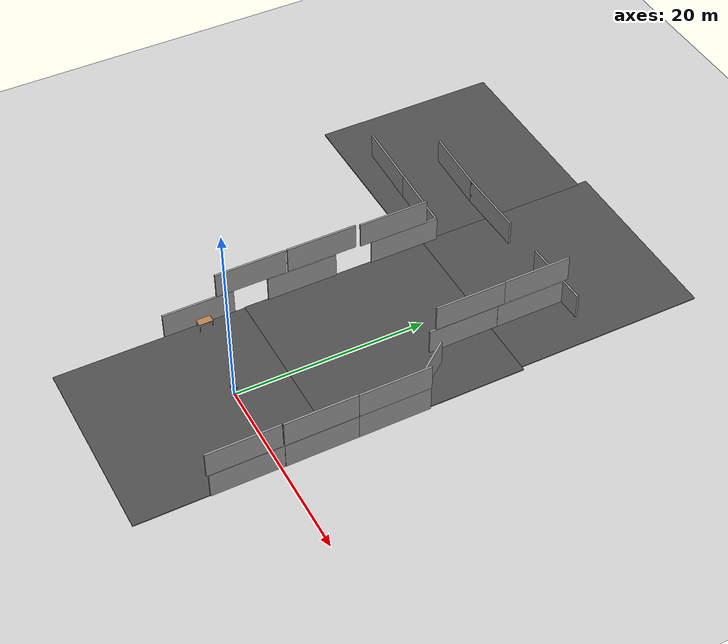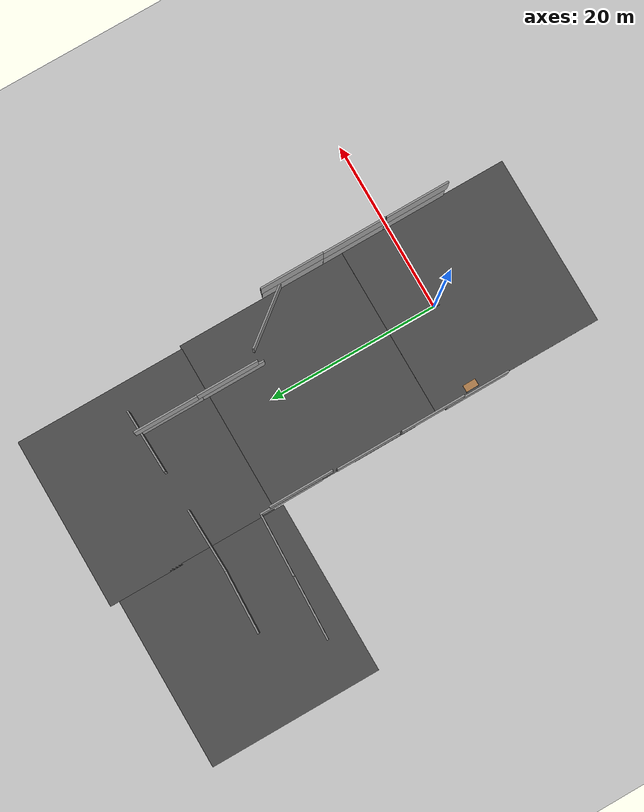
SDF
<sdf version="1.6">
 <world name="default">
  <include><uri>model://maav_matrice</uri><pose>0 0 1 0 0 1.57</pose></include>
  <model name="asphalt_plane">
   <static>1</static>
   <link name="link">
    <collision name="collision"><geometry><box><size>20 20 0.1</size></box></geometry></collision>
    <visual name="visual">
     <cast_shadows>0</cast_shadows>
     <geometry><box><size>20 20 0.1</size></box></geometry>
     <material>
      <script>
       <uri>model://asphalt_plane/materials/scripts</uri>
       <uri>model://asphalt_plane/materials/textures</uri>
       <name>vrc/asphalt</name>
      </script>
     </material>
    </visual>
   </link>
   <pose>0.016282 -4.35292 0 0 -0 0</pose>
  </model>
  <model name="ground_plane">
   <static>1</static>
   <link name="link">
    <collision name="collision">
     <geometry><plane><normal>0 0 1</normal><size>100 100</size></plane></geometry>
     <surface>
      <contact><collide_bitmask>65535</collide_bitmask></contact>
      <friction><ode><mu>100</mu><mu2>50</mu2></ode></friction>
     </surface>
    </collision>
    <visual name="visual">
     <cast_shadows>0</cast_shadows>
     <geometry><plane><normal>0 0 1</normal><size>100 100</size></plane></geometry>
     <material>
      <script><uri>file://media/materials/scripts/gazebo.material</uri><name>Gazebo/Grey</name></script>
     </material>
    </visual>
   </link>
   <pose>-1.27431 2.91806 0 0 -0 0</pose>
  </model>
  <model name="asphalt_plane_0">
   <static>1</static>
   <link name="link">
    <collision name="collision"><geometry><box><size>20 20 0.1</size></box></geometry></collision>
    <visual name="visual">
     <cast_shadows>0</cast_shadows>
     <geometry><box><size>20 20 0.1</size></box></geometry>
     <material>
      <script>
       <uri>model://asphalt_plane/materials/scripts</uri>
       <uri>model://asphalt_plane/materials/textures</uri>
       <name>vrc/asphalt</name>
      </script>
     </material>
    </visual>
   </link>
   <pose>-0.082642 15.648 0 0 -0 0</pose>
  </model>
  <model name="grey_wall_clone">
   <static>1</static>
   <link name="link">
    <pose>0 0 1.4 0 -0 0</pose>
    <collision name="collision"><geometry><box><size>7.5 0.2 2.8</size></box></geometry></collision>
    <visual name="visual">
     <cast_shadows>0</cast_shadows>
     <geometry><box><size>7.5 0.2 2.8</size></box></geometry>
     <material>
      <script>
       <uri>model://grey_wall/materials/scripts</uri>
       <uri>model://grey_wall/materials/textures</uri>
       <name>vrc/grey_wall</name>
      </script>
     </material>
    </visual>
   </link>
   <pose>-10.103 0.859458 0 0 -0 1.5731</pose>
  </model>
  <model name="grey_wall_clone_0">
   <static>1</static>
   <link name="link">
    <pose>0 0 1.4 0 -0 0</pose>
    <collision name="collision"><geometry><box><size>7.5 0.2 2.8</size></box></geometry></collision>
    <visual name="visual">
     <cast_shadows>0</cast_shadows>
     <geometry><box><size>7.5 0.2 2.8</size></box></geometry>
     <material>
      <script>
       <uri>model://grey_wall/materials/scripts</uri>
       <uri>model://grey_wall/materials/textures</uri>
       <name>vrc/grey_wall</name>
      </script>
     </material>
    </visual>
   </link>
   <pose>-10.0463 11.9758 0 0 -0 1.5731</pose>
  </model>
  <model name="grey_wall_clone_1">
   <static>1</static>
   <link name="link">
    <pose>0 0 1.4 0 -0 0</pose>
    <collision name="collision"><geometry><box><size>7.5 0.2 2.8</size></box></geometry></collision>
    <visual name="visual">
     <cast_shadows>0</cast_shadows>
     <geometry><box><size>7.5 0.2 2.8</size></box></geometry>
     <material>
      <script>
       <uri>model://grey_wall/materials/scripts</uri>
       <uri>model://grey_wall/materials/textures</uri>
       <name>vrc/grey_wall</name>
      </script>
     </material>
    </visual>
   </link>
   <pose>-10.0443 23.4308 0 0 -0 1.5731</pose>
  </model>
  <model name="table">
   <static>1</static>
   <link name="link">
    <collision name="surface">
     <pose>0 0 1 0 -0 0</pose>
     <geometry><box><size>1.5 0.8 0.03</size></box></geometry>
     <surface><friction><ode><mu>0.6</mu><mu2>0.6</mu2></ode></friction></surface>
    </collision>
    <visual name="visual1">
     <pose>0 0 1 0 -0 0</pose>
     <geometry><box><size>1.5 0.8 0.03</size></box></geometry>
     <material>
      <script><uri>file://media/materials/scripts/gazebo.material</uri><name>Gazebo/Wood</name></script>
     </material>
    </visual>
    <collision name="front_left_leg">
     <pose>0.68 0.38 0.5 0 -0 0</pose>
     <geometry><cylinder><radius>0.02</radius><length>1</length></cylinder></geometry>
    </collision>
    <visual name="front_left_leg">
     <pose>0.68 0.38 0.5 0 -0 0</pose>
     <geometry><cylinder><radius>0.02</radius><length>1</length></cylinder></geometry>
     <material>
      <script><uri>file://media/materials/scripts/gazebo.material</uri><name>Gazebo/Grey</name></script>
     </material>
    </visual>
    <collision name="front_right_leg">
     <pose>0.68 -0.38 0.5 0 -0 0</pose>
     <geometry><cylinder><radius>0.02</radius><length>1</length></cylinder></geometry>
    </collision>
    <visual name="front_right_leg">
     <pose>0.68 -0.38 0.5 0 -0 0</pose>
     <geometry><cylinder><radius>0.02</radius><length>1</length></cylinder></geometry>
     <material>
      <script><uri>file://media/materials/scripts/gazebo.material</uri><name>Gazebo/Grey</name></script>
     </material>
    </visual>
    <collision name="back_right_leg">
     <pose>-0.68 -0.38 0.5 0 -0 0</pose>
     <geometry><cylinder><radius>0.02</radius><length>1</length></cylinder></geometry>
    </collision>
    <visual name="back_right_leg">
     <pose>-0.68 -0.38 0.5 0 -0 0</pose>
     <geometry><cylinder><radius>0.02</radius><length>1</length></cylinder></geometry>
     <material>
      <script><uri>file://media/materials/scripts/gazebo.material</uri><name>Gazebo/Grey</name></script>
     </material>
    </visual>
    <collision name="back_left_leg">
     <pose>-0.68 0.38 0.5 0 -0 0</pose>
     <geometry><cylinder><radius>0.02</radius><length>1</length></cylinder></geometry>
    </collision>
    <visual name="back_left_leg">
     <pose>-0.68 0.38 0.5 0 -0 0</pose>
     <geometry><cylinder><radius>0.02</radius><length>1</length></cylinder></geometry>
     <material>
      <script><uri>file://media/materials/scripts/gazebo.material</uri><name>Gazebo/Grey</name></script>
     </material>
    </visual>
   </link>
   <pose>-9.32133 1.09323 0.018125 -0.000255 -0.011983 -1.54953</pose>
  </model>
  <model name="grey_wall_clone_3">
   <static>1</static>
   <link name="link">
    <pose>0 0 1.4 0 -0 0</pose>
    <collision name="collision"><geometry><box><size>7.5 0.2 2.8</size></box></geometry></collision>
    <visual name="visual">
     <cast_shadows>0</cast_shadows>
     <geometry><box><size>7.5 0.2 2.8</size></box></geometry>
     <material>
      <script>
       <uri>model://grey_wall/materials/scripts</uri>
       <uri>model://grey_wall/materials/textures</uri>
       <name>vrc/grey_wall</name>
      </script>
     </material>
    </visual>
   </link>
   <pose>10.0149 -3.17281 0 0 -0 1.5731</pose>
  </model>
  <model name="grey_wall_clone_4">
   <static>1</static>
   <link name="link">
    <pose>0 0 1.4 0 -0 0</pose>
    <collision name="collision"><geometry><box><size>7.5 0.2 2.8</size></box></geometry></collision>
    <visual name="visual">
     <cast_shadows>0</cast_shadows>
     <geometry><box><size>7.5 0.2 2.8</size></box></geometry>
     <material>
      <script>
       <uri>model://grey_wall/materials/scripts</uri>
       <uri>model://grey_wall/materials/textures</uri>
       <name>vrc/grey_wall</name>
      </script>
     </material>
    </visual>
   </link>
   <pose>10.0341 4.23621 0 0 -0 1.5731</pose>
  </model>
  <model name="grey_wall_clone_5">
   <static>1</static>
   <link name="link">
    <pose>0 0 1.4 0 -0 0</pose>
    <collision name="collision"><geometry><box><size>7.5 0.2 2.8</size></box></geometry></collision>
    <visual name="visual">
     <cast_shadows>0</cast_shadows>
     <geometry><box><size>7.5 0.2 2.8</size></box></geometry>
     <material>
      <script>
       <uri>model://grey_wall/materials/scripts</uri>
       <uri>model://grey_wall/materials/textures</uri>
       <name>vrc/grey_wall</name>
      </script>
     </material>
    </visual>
   </link>
   <pose>10.0238 11.678 0 0 -0 1.5731</pose>
  </model>
  <model name="grey_wall_clone_7">
   <static>1</static>
   <link name="link">
    <pose>0 0 1.4 0 -0 0</pose>
    <collision name="collision"><geometry><box><size>7.5 0.2 2.8</size></box></geometry></collision>
    <visual name="visual">
     <cast_shadows>0</cast_shadows>
     <geometry><box><size>7.5 0.2 2.8</size></box></geometry>
     <material>
      <script>
       <uri>model://grey_wall/materials/scripts</uri>
       <uri>model://grey_wall/materials/textures</uri>
       <name>vrc/grey_wall</name>
      </script>
     </material>
    </visual>
   </link>
   <pose>3.69755 22.521 0 0 -0 1.5731</pose>
  </model>
  <model name="grey_wall_clone_5_clone">
   <static>1</static>
   <link name="link">
    <pose>0 0 1.4 0 -0 0</pose>
    <collision name="collision"><geometry><box><size>7.5 0.2 2.8</size></box></geometry></collision>
    <visual name="visual">
     <cast_shadows>0</cast_shadows>
     <geometry><box><size>7.5 0.2 2.8</size></box></geometry>
     <material>
      <script>
       <uri>model://grey_wall/materials/scripts</uri>
       <uri>model://grey_wall/materials/textures</uri>
       <name>vrc/grey_wall</name>
      </script>
     </material>
    </visual>
   </link>
   <pose>7.6586 16.1854 0 0 -0 2.23465</pose>
  </model>
  <model name="asphalt_plane_0_clone">
   <static>1</static>
   <link name="link">
    <collision name="collision"><geometry><box><size>20 20 0.1</size></box></geometry></collision>
    <visual name="visual">
     <cast_shadows>0</cast_shadows>
     <geometry><box><size>20 20 0.1</size></box></geometry>
     <material>
      <script>
       <uri>model://asphalt_plane/materials/scripts</uri>
       <uri>model://asphalt_plane/materials/textures</uri>
       <name>vrc/asphalt</name>
      </script>
     </material>
    </visual>
   </link>
   <pose>-0.458998 35.5899 0 0 -0 0</pose>
  </model>
  <model name="grey_wall_clone_7_clone">
   <static>1</static>
   <link name="link">
    <pose>0 0 1.4 0 -0 0</pose>
    <collision name="collision"><geometry><box><size>7.5 0.2 2.8</size></box></geometry></collision>
    <visual name="visual">
     <cast_shadows>0</cast_shadows>
     <geometry><box><size>7.5 0.2 2.8</size></box></geometry>
     <material>
      <script>
       <uri>model://grey_wall/materials/scripts</uri>
       <uri>model://grey_wall/materials/textures</uri>
       <name>vrc/grey_wall</name>
      </script>
     </material>
    </visual>
   </link>
   <pose>3.6938 30.0007 0 0 -0 1.5731</pose>
  </model>
  <model name="grey_wall_clone_7_clone_0">
   <static>1</static>
   <link name="link">
    <pose>0 0 1.4 0 -0 0</pose>
    <collision name="collision"><geometry><box><size>7.5 0.2 2.8</size></box></geometry></collision>
    <visual name="visual">
     <cast_shadows>0</cast_shadows>
     <geometry><box><size>7.5 0.2 2.8</size></box></geometry>
     <material>
      <script>
       <uri>model://grey_wall/materials/scripts</uri>
       <uri>model://grey_wall/materials/textures</uri>
       <name>vrc/grey_wall</name>
      </script>
     </material>
    </visual>
   </link>
   <pose>-13.7551 27.2191 0 0 -0 3.10768</pose>
  </model>
  <model name="grey_wall_clone_7_clone_1">
   <static>1</static>
   <link name="link">
    <pose>0 0 1.4 0 -0 0</pose>
    <collision name="collision"><geometry><box><size>7.5 0.2 2.8</size></box></geometry></collision>
    <visual name="visual">
     <cast_shadows>0</cast_shadows>
     <geometry><box><size>7.5 0.2 2.8</size></box></geometry>
     <material>
      <script>
       <uri>model://grey_wall/materials/scripts</uri>
       <uri>model://grey_wall/materials/textures</uri>
       <name>vrc/grey_wall</name>
      </script>
     </material>
    </visual>
   </link>
   <pose>2.50939 33.6742 0 0 -0 0.030482</pose>
  </model>
  <model name="grey_wall_clone_7_clone_1_clone">
   <static>1</static>
   <link name="link">
    <pose>0 0 1.4 0 -0 0</pose>
    <collision name="collision"><geometry><box><size>7.5 0.2 2.8</size></box></geometry></collision>
    <visual name="visual">
     <cast_shadows>0</cast_shadows>
     <geometry><box><size>7.5 0.2 2.8</size></box></geometry>
     <material>
      <script>
       <uri>model://grey_wall/materials/scripts</uri>
       <uri>model://grey_wall/materials/textures</uri>
       <name>vrc/grey_wall</name>
      </script>
     </material>
    </visual>
   </link>
   <pose>-9.64453 33.3043 0 0 -0 0.030482</pose>
  </model>
  <model name="asphalt_plane_0_clone_clone">
   <static>1</static>
   <link name="link">
    <collision name="collision"><geometry><box><size>20 20 0.1</size></box></geometry></collision>
    <visual name="visual">
     <cast_shadows>0</cast_shadows>
     <geometry><box><size>20 20 0.1</size></box></geometry>
     <material>
      <script>
       <uri>model://asphalt_plane/materials/scripts</uri>
       <uri>model://asphalt_plane/materials/textures</uri>
       <name>vrc/asphalt</name>
      </script>
     </material>
    </visual>
   </link>
   <pose>-20.2703 34.5479 0 0 -0 0</pose>
  </model>
  <model name="grey_wall_clone_7_clone_0_clone">
   <static>1</static>
   <link name="link">
    <pose>0 0 1.4 0 -0 0</pose>
    <collision name="collision"><geometry><box><size>7.5 0.2 2.8</size></box></geometry></collision>
    <visual name="visual">
     <cast_shadows>0</cast_shadows>
     <geometry><box><size>7.5 0.2 2.8</size></box></geometry>
     <material>
      <script>
       <uri>model://grey_wall/materials/scripts</uri>
       <uri>model://grey_wall/materials/textures</uri>
       <name>vrc/grey_wall</name>
      </script>
     </material>
    </visual>
   </link>
   <pose>-16.9368 33.3221 0 0 -0 3.10768</pose>
  </model>
  <model name="grey_wall_clone_7_clone_0_clone_0">
   <static>1</static>
   <link name="link">
    <pose>0 0 1.4 0 -0 0</pose>
    <collision name="collision"><geometry><box><size>7.5 0.2 2.8</size></box></geometry></collision>
    <visual name="visual">
     <cast_shadows>0</cast_shadows>
     <geometry><box><size>7.5 0.2 2.8</size></box></geometry>
     <material>
      <script>
       <uri>model://grey_wall/materials/scripts</uri>
       <uri>model://grey_wall/materials/textures</uri>
       <name>vrc/grey_wall</name>
      </script>
     </material>
    </visual>
   </link>
   <pose>-21.0764 27.4472 0 0 -0 3.10768</pose>
  </model>
  <model name="grey_wall_clone_2_clone_clone">
   <static>1</static>
   <link name="link">
    <pose>0 0 1.4 0 -0 0</pose>
    <collision name="collision"><geometry><box><size>7.5 0.2 2.8</size></box></geometry></collision>
    <visual name="visual">
     <cast_shadows>0</cast_shadows>
     <geometry><box><size>7.5 0.2 2.8</size></box></geometry>
     <material>
      <script>
       <uri>model://grey_wall/materials/scripts</uri>
       <uri>model://grey_wall/materials/textures</uri>
       <name>vrc/grey_wall</name>
      </script>
     </material>
    </visual>
   </link>
   <pose>9.96798 -3.36649 2.80072 0 -0 1.5731</pose>
  </model>
  <model name="grey_wall_clone_2_clone_clone_0">
   <static>1</static>
   <link name="link">
    <pose>0 0 1.4 0 -0 0</pose>
    <collision name="collision"><geometry><box><size>7.5 0.2 2.8</size></box></geometry></collision>
    <visual name="visual">
     <cast_shadows>0</cast_shadows>
     <geometry><box><size>7.5 0.2 2.8</size></box></geometry>
     <material>
      <script>
       <uri>model://grey_wall/materials/scripts</uri>
       <uri>model://grey_wall/materials/textures</uri>
       <name>vrc/grey_wall</name>
      </script>
     </material>
    </visual>
   </link>
   <pose>9.99051 4.24137 2.80072 0 -0 1.5731</pose>
  </model>
  <model name="grey_wall_clone_2_clone_clone_1">
   <static>1</static>
   <link name="link">
    <pose>0 0 1.4 0 -0 0</pose>
    <collision name="collision"><geometry><box><size>7.5 0.2 2.8</size></box></geometry></collision>
    <visual name="visual">
     <cast_shadows>0</cast_shadows>
     <geometry><box><size>7.5 0.2 2.8</size></box></geometry>
     <material>
      <script>
       <uri>model://grey_wall/materials/scripts</uri>
       <uri>model://grey_wall/materials/textures</uri>
       <name>vrc/grey_wall</name>
      </script>
     </material>
    </visual>
   </link>
   <pose>10.0221 11.732 2.80072 0 -0 1.5731</pose>
  </model>
  <model name="grey_wall_clone_2_clone_clone_2">
   <static>1</static>
   <link name="link">
    <pose>0 0 1.4 0 -0 0</pose>
    <collision name="collision"><geometry><box><size>7.5 0.2 2.8</size></box></geometry></collision>
    <visual name="visual">
     <cast_shadows>0</cast_shadows>
     <geometry><box><size>7.5 0.2 2.8</size></box></geometry>
     <material>
      <script>
       <uri>model://grey_wall/materials/scripts</uri>
       <uri>model://grey_wall/materials/textures</uri>
       <name>vrc/grey_wall</name>
      </script>
     </material>
    </visual>
   </link>
   <pose>-10.1353 6.56368 2.80072 0 -0 1.5731</pose>
  </model>
  <model name="grey_wall_clone_2_clone_clone_3">
   <static>1</static>
   <link name="link">
    <pose>0 0 1.4 0 -0 0</pose>
    <collision name="collision"><geometry><box><size>7.5 0.2 2.8</size></box></geometry></collision>
    <visual name="visual">
     <cast_shadows>0</cast_shadows>
     <geometry><box><size>7.5 0.2 2.8</size></box></geometry>
     <material>
      <script>
       <uri>model://grey_wall/materials/scripts</uri>
       <uri>model://grey_wall/materials/textures</uri>
       <name>vrc/grey_wall</name>
      </script>
     </material>
    </visual>
   </link>
   <pose>-10.1594 14.2685 2.80072 0 -0 1.5731</pose>
  </model>
  <model name="grey_wall_clone_2_clone_clone_4">
   <static>1</static>
   <link name="link">
    <pose>0 0 1.4 0 -0 0</pose>
    <collision name="collision"><geometry><box><size>7.5 0.2 2.8</size></box></geometry></collision>
    <visual name="visual">
     <cast_shadows>0</cast_shadows>
     <geometry><box><size>7.5 0.2 2.8</size></box></geometry>
     <material>
      <script>
       <uri>model://grey_wall/materials/scripts</uri>
       <uri>model://grey_wall/materials/textures</uri>
       <name>vrc/grey_wall</name>
      </script>
     </material>
    </visual>
   </link>
   <pose>-10.0195 22.207 2.80072 0 -0 1.5731</pose>
  </model>
  <model name="grey_wall_clone_2_clone_clone_5">
   <static>1</static>
   <link name="link">
    <pose>0 0 1.4 0 -0 0</pose>
    <collision name="collision"><geometry><box><size>7.5 0.2 2.8</size></box></geometry></collision>
    <visual name="visual">
     <cast_shadows>0</cast_shadows>
     <geometry><box><size>7.5 0.2 2.8</size></box></geometry>
     <material>
      <script>
       <uri>model://grey_wall/materials/scripts</uri>
       <uri>model://grey_wall/materials/textures</uri>
       <name>vrc/grey_wall</name>
      </script>
     </material>
    </visual>
   </link>
   <pose>3.65625 23.2169 2.80072 0 -0 1.5731</pose>
  </model>
  <model name="grey_wall_clone_2_clone_clone_6">
   <static>1</static>
   <link name="link">
    <pose>0 0 1.4 0 -0 0</pose>
    <collision name="collision"><geometry><box><size>7.5 0.2 2.8</size></box></geometry></collision>
    <visual name="visual">
     <cast_shadows>0</cast_shadows>
     <geometry><box><size>7.5 0.2 2.8</size></box></geometry>
     <material>
      <script>
       <uri>model://grey_wall/materials/scripts</uri>
       <uri>model://grey_wall/materials/textures</uri>
       <name>vrc/grey_wall</name>
      </script>
     </material>
    </visual>
   </link>
   <pose>3.59306 30.4559 2.80072 0 -0 1.5731</pose>
  </model>
 </world>
</sdf>
